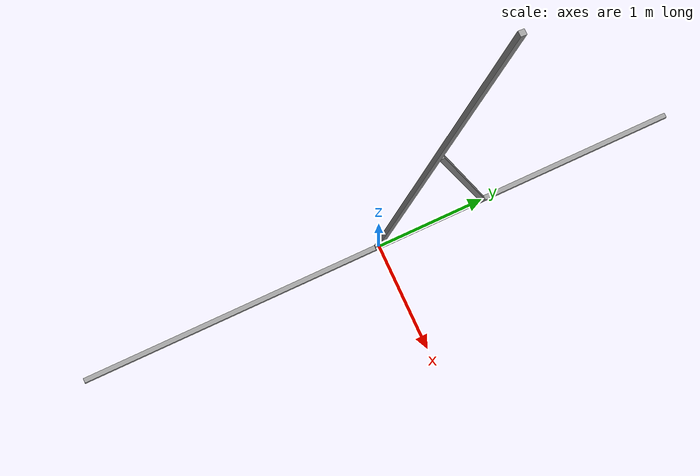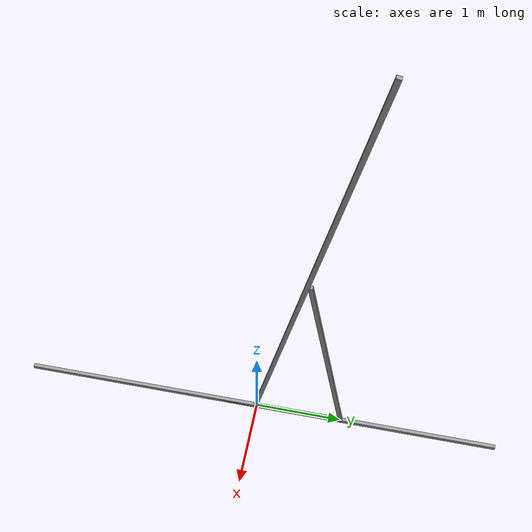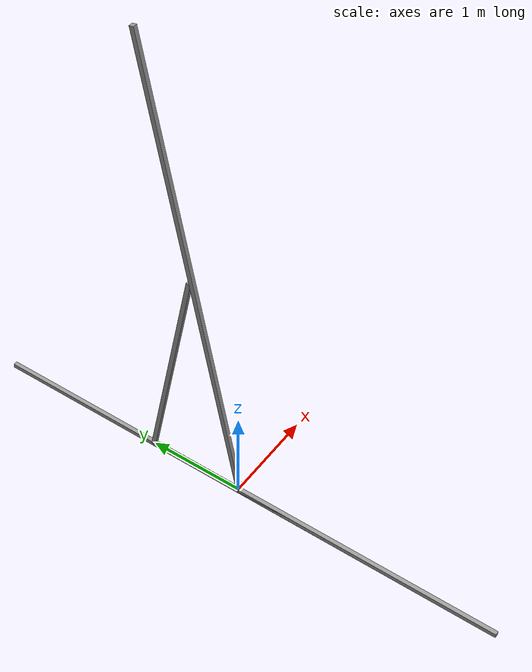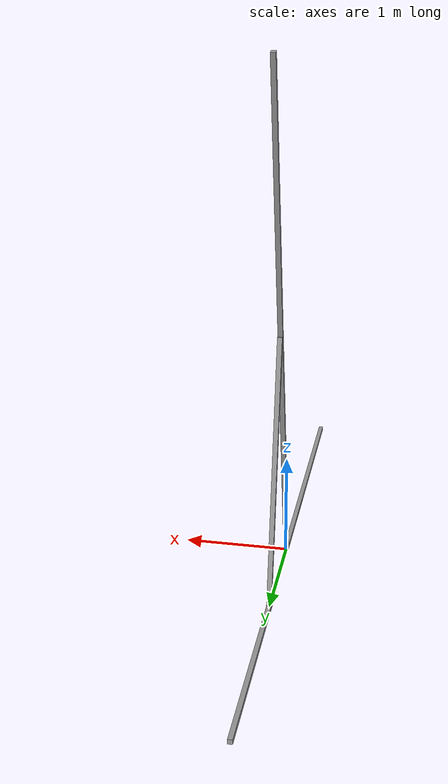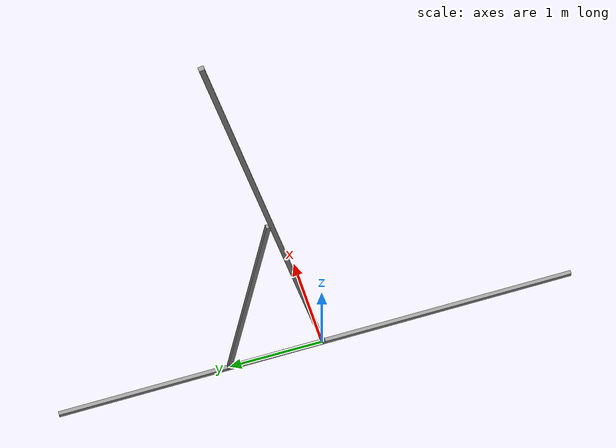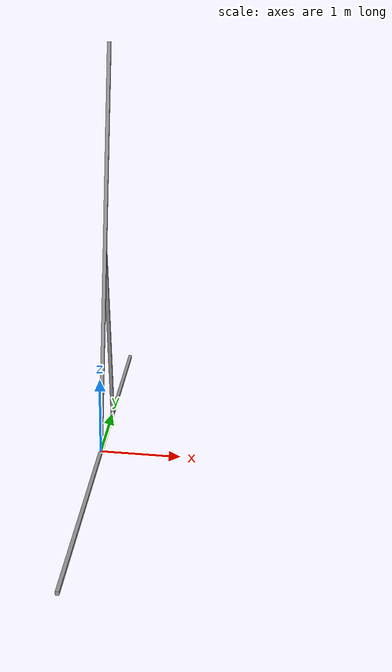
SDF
<?xml version="1.0" ?>
<sdf version="1.5">
  <world name="default">
    <scene>
      <origin_visual>false</origin_visual>
    </scene>

    <gui fullscreen='0'>
      <plugin name='keyboard' filename='libKeyboardGUIPlugin.so'/>
    </gui>

    <!-- A global light source -->
    <include>
      <uri>model://sun</uri>
    </include>
    <!-- A ground plane -->
    <model name="ground_plane">
      <static>true</static>
      <link name="link">
        <collision name="collision">
          <geometry>
            <plane>
              <normal>0 0 1</normal>
              <size>100 100</size>
            </plane>
          </geometry>
          <surface>
            <friction>
              <ode>
                <mu>100</mu>
                <mu2>50</mu2>
              </ode>
            </friction>
          </surface>
        </collision>
      </link>
    </model>

    <model name='Chebyshev_Lambda'>
      <link name='bar_1'>
        <inertial>
          <mass>0.00197049</mass>
          <inertia>
            <ixx>0.00016455</ixx>
            <ixy>0</ixy>
            <ixz>0</ixz>
            <iyy>6.5e-07</iyy>
            <iyz>0</iyz>
            <izz>0.00016451</izz>
          </inertia>
          <pose frame=''>0 0 0 0 -0 0</pose>
        </inertial>
        <pose frame=''>0 -0.991882 0 0 -0 0</pose>
        <gravity>1</gravity>
        <self_collide>0</self_collide>
        <kinematic>0</kinematic>
        <enable_wind>0</enable_wind>
        <visual name='visual'>
          <pose frame=''>0 0.5 0 0 -0 0</pose>
          <geometry>
            <box>
              <size>0.04318 1 0.045636</size>
            </box>
          </geometry>
          <material>
            <lighting>1</lighting>
            <script>
              <uri>file://media/materials/scripts/gazebo.material</uri>
              <name>Gazebo/Grey</name>
            </script>
            <shader type='vertex'>
              <normal_map>__default__</normal_map>
            </shader>
            <ambient>0.3 0.3 0.3 1</ambient>
            <diffuse>0.7 0.7 0.7 1</diffuse>
            <specular>0.01 0.01 0.01 1</specular>
            <emissive>0 0 0 1</emissive>
          </material>
          <transparency>0</transparency>
          <cast_shadows>1</cast_shadows>
        </visual>
      </link>
      <link name='bar_3'>
        <inertial>
          <mass>0.00197049</mass>
          <inertia>
            <ixx>0.00016455</ixx>
            <ixy>0</ixy>
            <ixz>0</ixz>
            <iyy>6.5e-07</iyy>
            <iyz>0</iyz>
            <izz>0.00016451</izz>
          </inertia>
          <pose frame=''>0 0 0 0 -0 0</pose>
        </inertial>
        <pose frame=''>0 1.00812 0 1.77 -0 0</pose>
        <gravity>1</gravity>
        <self_collide>0</self_collide>
        <kinematic>0</kinematic>
        <enable_wind>0</enable_wind>
        <visual name='visual'>
          <pose frame=''>0 1.25 0 0 -0 0</pose>
          <geometry>
            <box>
              <size>0.04318 2.5 0.045636</size>
            </box>
          </geometry>
          <material>
            <lighting>1</lighting>
            <script>
              <uri>file://media/materials/scripts/gazebo.material</uri>
              <name>Gazebo/Grey</name>
            </script>
            <shader type='vertex'>
              <normal_map>__default__</normal_map>
            </shader>
            <ambient>0.3 0.3 0.3 1</ambient>
            <diffuse>0.7 0.7 0.7 1</diffuse>
            <specular>0.01 0.01 0.01 1</specular>
            <emissive>0 0 0 1</emissive>
          </material>
          <transparency>0</transparency>
          <cast_shadows>1</cast_shadows>
        </visual>
      </link>
      <link name='bar_2'>
        <inertial>
          <mass>0.00267848</mass>
          <inertia>
            <ixx>0.00041288</ixx>
            <ixy>0</ixy>
            <ixz>0</ixz>
            <iyy>8.8e-07</iyy>
            <iyz>0</iyz>
            <izz>0.00041282</izz>
          </inertia>
          <pose frame=''>0 0 0 0 -0 0</pose>
        </inertial>
        <pose frame=''>0 -0.016237 0 1.37 -0 0</pose>
        <gravity>1</gravity>
        <self_collide>0</self_collide>
        <kinematic>0</kinematic>
        <enable_wind>0</enable_wind>
        <visual name='visual'>
          <pose frame=''>0 2.5 0 0 -0 0</pose>
          <geometry>
            <box>
              <size>0.04318 5 0.045636</size>
            </box>
          </geometry>
          <material>
            <lighting>1</lighting>
            <script>
              <uri>file://media/materials/scripts/gazebo.material</uri>
              <name>Gazebo/Grey</name>
            </script>
            <shader type='vertex'>
              <normal_map>__default__</normal_map>
            </shader>
            <ambient>0.3 0.3 0.3 1</ambient>
            <diffuse>0.7 0.7 0.7 1</diffuse>
            <specular>0.01 0.01 0.01 1</specular>
            <emissive>0 0 0 1</emissive>
          </material>
          <transparency>0</transparency>
          <cast_shadows>1</cast_shadows>
        </visual>
      </link>
      <link name='bar_0'>
        <inertial>
          <mass>26102.6</mass>
          <inertia>
            <ixx>68885.7</ixx>
            <ixy>0</ixy>
            <ixz>0</ixz>
            <iyy>58539.2</iyy>
            <iyz>0</iyz>
            <izz>127416</izz>
          </inertia>
          <pose frame=''>0 0 0 0 -0 0</pose>
        </inertial>
        <pose frame=''>0 0 0 0 -0 0</pose>
        <gravity>1</gravity>
        <self_collide>0</self_collide>
        <kinematic>0</kinematic>
        <enable_wind>0</enable_wind>
        <visual name='visual'>
          <pose frame=''>0 0 0 0 -0 0</pose>
          <geometry>
            <box>
              <size>0.04318 5.62728 0.046331</size>
            </box>
          </geometry>
          <material>
            <lighting>1</lighting>
            <script>
              <uri>file://media/materials/scripts/gazebo.material</uri>
              <name>Gazebo/Grey</name>
            </script>
            <shader type='vertex'>
              <normal_map>__default__</normal_map>
            </shader>
            <ambient>0.3 0.3 0.3 1</ambient>
            <diffuse>0.7 0.7 0.7 1</diffuse>
            <specular>0.01 0.01 0.01 1</specular>
            <emissive>0 0 0 1</emissive>
          </material>
          <transparency>0</transparency>
          <cast_shadows>1</cast_shadows>
        </visual>
        <collision name='collision'>
          <laser_retro>0</laser_retro>
          <max_contacts>10</max_contacts>
          <pose frame=''>0 0 0 0 -0 0</pose>
          <geometry>
            <box>
              <size>5.18747 5.62728 0.046331</size>
            </box>
          </geometry>
          <surface>
            <friction>
              <ode>
                <mu>1</mu>
                <mu2>1</mu2>
                <fdir1>0 0 0</fdir1>
                <slip1>0</slip1>
                <slip2>0</slip2>
              </ode>
              <torsional>
                <coefficient>1</coefficient>
                <patch_radius>0</patch_radius>
                <surface_radius>0</surface_radius>
                <use_patch_radius>1</use_patch_radius>
                <ode>
                  <slip>0</slip>
                </ode>
              </torsional>
            </friction>
            <bounce>
              <restitution_coefficient>0</restitution_coefficient>
              <threshold>1e+06</threshold>
            </bounce>
            <contact>
              <collide_without_contact>0</collide_without_contact>
              <collide_without_contact_bitmask>1</collide_without_contact_bitmask>
              <collide_bitmask>1</collide_bitmask>
              <ode>
                <soft_cfm>0</soft_cfm>
                <soft_erp>0.2</soft_erp>
                <kp>1e+13</kp>
                <kd>1</kd>
                <max_vel>0.01</max_vel>
                <min_depth>0</min_depth>
              </ode>
              <bullet>
                <split_impulse>1</split_impulse>
                <split_impulse_penetration_threshold>-0.01</split_impulse_penetration_threshold>
                <soft_cfm>0</soft_cfm>
                <soft_erp>0.2</soft_erp>
                <kp>1e+13</kp>
                <kd>1</kd>
              </bullet>
            </contact>
          </surface>
        </collision>
      </link>
      <joint name='bar_0_bar_1' type='revolute'>
        <parent>bar_0</parent>
        <child>bar_1</child>
        <axis>
          <xyz>1 0 0</xyz>
        </axis>
      </joint>
      <joint name='bar_1_bar_2' type='revolute'>
        <parent>bar_1</parent>
        <child>bar_2</child>
        <axis>
          <xyz>1 0 0</xyz>
        </axis>
      </joint>
      <joint name='bar_2_bar_3' type='revolute'>
        <parent>bar_2</parent>
        <child>bar_3</child>
        <pose frame=''>0 2.5 0 0 -0 0</pose>
        <axis>
          <xyz>1 0 0</xyz>
        </axis>
      </joint>
      <joint name='bar_3_bar_0' type='revolute'>
        <parent>bar_3</parent>
        <child>bar_0</child>
        <pose frame=''>0 1.0 0 0 -0 0</pose>
        <axis>
          <xyz>1 0 0</xyz>
        </axis>
      </joint>

      <plugin name='keystojoints' filename='libKeysToJointsPlugin.so'>
        <map key='107' joint='bar_0_bar_1' scale='0.3' type='position' kp='1' ki='0' kd='1'/>
        <map key='108' joint='bar_0_bar_1' scale='-0.3' type='position' kp='1' ki='0' kd='1'/>

      </plugin>

      <plugin name='3dplot' filename='libLinkPlot3DPlugin.so'>

        <!-- Update at 10 Hz -->
        <frequency>10</frequency>

        <!-- Rotational -->
        <plot>
          <link>bar_1</link>

          <pose>0 1 0 0 0 0</pose>

          <material>Gazebo/Red</material>
        </plot>

        <!-- Linear -->
        <plot>
          <link>bar_2</link>

          <pose>0 5 0 0 0 0</pose>

          <material>Gazebo/Blue</material>
        </plot>

      </plugin>

    </model>
  </world>
</sdf>
